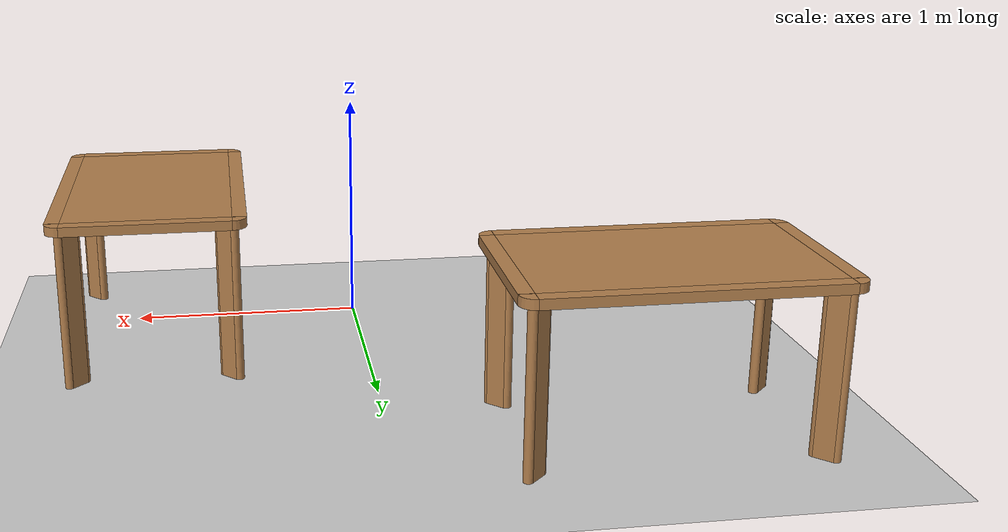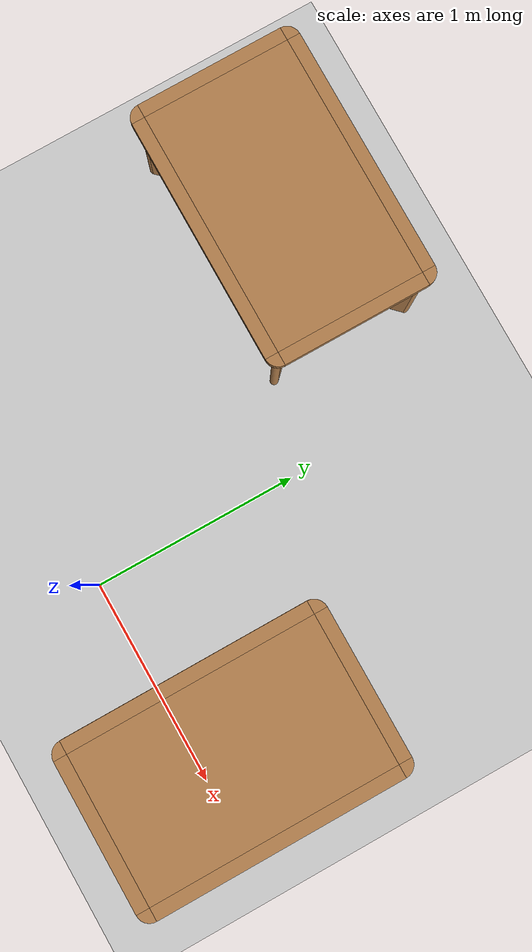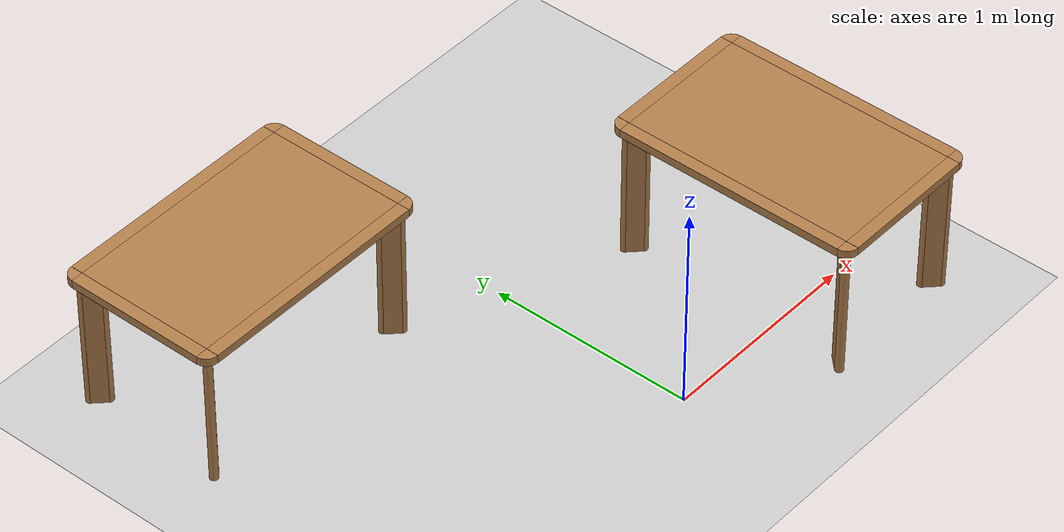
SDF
<sdf version="1.4">
 <world name="table">
  <include><uri>model://ground_plane</uri></include>
  <physics type="ode"><gravity>0 0 -9.81</gravity></physics>
  <include>
   <name>table_01</name>
   <static>true</static>
   <pose>0.9 0.2 0 0 0 0</pose>
   <uri>model://inteliplan_interface/configs/models/table</uri>
  </include>
  <include>
   <name>table_02</name>
   <static>true</static>
   <pose>-1 1.5 0 0 0 1.57</pose>
   <uri>model://inteliplan_interface/configs/models/table</uri>
  </include>
  <light name="user_point_light_0" type="point">
   <pose>-4.98064 4.68115 12 0 -0 0</pose>
   <diffuse>0.5 0.5 0.5 1</diffuse>
   <specular>0.1 0.1 0.1 1</specular>
   <attenuation>
    <range>20</range>
    <constant>0.9</constant>
    <linear>0.01</linear>
    <quadratic>0.001</quadratic>
   </attenuation>
   <cast_shadows>0</cast_shadows>
   <direction>0 0 -1</direction>
  </light>
  <plugin name="CustomWorldPlugin" filename="libworld_gazebo_plugin.so"/>
 </world>
</sdf>

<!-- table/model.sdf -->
<sdf version="1.4">
    <model name='kitchen_table'>
      <link name='link'>
        <pose>0.0 0.0 0.0 0 0 0</pose>
        <inertial>
          <mass>10.0</mass>
          <inertia>
            <ixx>1</ixx>
            <ixy>0</ixy>
            <ixz>0</ixz>
            <iyy>1</iyy>
            <iyz>0</iyz>
            <izz>1</izz>
          </inertia>
        </inertial>
        <visual name='center_board'>
          <pose>0.0 0.0 0.68 0 0 0</pose>
          <geometry>
            <box>
              <size>0.68 1.13 0.04</size>
            </box>
          </geometry>
          <material>
            <script>
              <uri>model://inteliplan_interface/configs/models/table/wood/scripts/wood.material</uri>
              <name>wood</name>
            </script>
          </material>
        </visual>
        <collision name='collision_center_board'>
          <pose>0.0 0.0 0.68 0 0 0</pose>
          <geometry>
            <box>
              <size>0.68 1.13 0.04</size>
            </box>
          </geometry>
          <max_contacts>10</max_contacts>
          <surface>
            <bounce/>
            <friction>
              <ode/>
            </friction>
            <contact>
              <ode/>
            </contact>
          </surface>
        </collision>
        <visual name='front_board'>
          <pose>0.37 0 0.68 0 0 0</pose>
          <geometry>
            <box>
              <size>0.06 1.13 0.04</size>
            </box>
          </geometry>
          <material>
            <script>
              <uri>model://inteliplan_interface/configs/models/table/wood/scripts/wood.material</uri>
              <name>wood</name>
            </script>
          </material>
        </visual>
        <collision name='collision_front_board'>
          <pose>0.37 0 0.68 0 0 0</pose>
          <geometry>
            <box>
              <size>0.06 1.13 0.04</size>
            </box>
          </geometry>
          <max_contacts>10</max_contacts>
          <surface>
            <bounce/>
            <friction>
              <ode/>
            </friction>
            <contact>
              <ode/>
            </contact>
          </surface>
        </collision>
        <visual name='back_board'>
          <pose>-0.37 0 0.68 0 0 0</pose>
          <geometry>
            <box>
              <size>0.06 1.13 0.04</size>
            </box>
          </geometry>
          <material>
            <script>
              <uri>model://inteliplan_interface/configs/models/table/wood/scripts/wood.material</uri>
              <name>wood</name>
            </script>
          </material>
        </visual>
        <collision name='collision_back_board'>
          <pose>-0.37 0 0.68 0 0 0</pose>
          <geometry>
            <box>
              <size>0.06 1.13 0.04</size>
            </box>
          </geometry>
          <max_contacts>10</max_contacts>
          <surface>
            <bounce/>
            <friction>
              <ode/>
            </friction>
            <contact>
              <ode/>
            </contact>
          </surface>
        </collision>
        <visual name='right_board'>
          <pose>0 0.595 0.68 0 0 0</pose>
          <geometry>
            <box>
              <size>0.68 0.06 0.04</size>
            </box>
          </geometry>
          <material>
            <script>
              <uri>model://inteliplan_interface/configs/models/table/wood/scripts/wood.material</uri>
              <name>wood</name>
            </script>
          </material>
        </visual>
        <collision name='collision_right_board'>
          <pose>0 0.595 0.68 0 0 0</pose>
          <geometry>
            <box>
              <size>0.68 0.06 0.04</size>
            </box>
          </geometry>
          <max_contacts>10</max_contacts>
          <surface>
            <bounce/>
            <friction>
              <ode/>
            </friction>
            <contact>
              <ode/>
            </contact>
          </surface>
        </collision>
        <visual name='left_board'>
          <pose>0 -0.595 0.68 0 0 0</pose>
          <geometry>
            <box>
              <size>0.68 0.06 0.04</size>
            </box>
          </geometry>
          <material>
            <script>
              <uri>model://inteliplan_interface/configs/models/table/wood/scripts/wood.material</uri>
              <name>wood</name>
            </script>
          </material>
        </visual>
        <collision name='collision_left_board'>
          <pose>0 -0.595 0.68 0 0 0</pose>
          <geometry>
            <box>
              <size>0.68 0.06 0.04</size>
            </box>
          </geometry>
          <max_contacts>10</max_contacts>
          <surface>
            <bounce/>
            <friction>
              <ode/>
            </friction>
            <contact>
              <ode/>
            </contact>
          </surface>
        </collision>
        <visual name='front_right_corner_board'>
          <pose>0.34 0.565 0.68 0 0 0</pose>
          <geometry>
            <cylinder>
              <radius>0.06</radius>
              <length>0.039</length>
            </cylinder>
          </geometry>
          <material>
            <script>
              <uri>model://inteliplan_interface/configs/models/table/wood/scripts/wood.material</uri>
              <name>wood</name>
            </script>
          </material>
        </visual>
        <collision name='collision_front_right_corner_board'>
          <pose>0.34 0.565 0.68 0 0 0</pose>
          <geometry>
            <cylinder>
              <radius>0.06</radius>
              <length>0.039</length>
            </cylinder>
          </geometry>
          <max_contacts>10</max_contacts>
          <surface>
            <bounce/>
            <friction>
              <ode/>
            </friction>
            <contact>
              <ode/>
            </contact>
          </surface>
        </collision>
        <visual name='front_left_corner_board'>
          <pose>0.34 -0.565 0.68 0 0 0</pose>
          <geometry>
            <cylinder>
              <radius>0.06</radius>
              <length>0.039</length>
            </cylinder>
          </geometry>
          <material>
            <script>
              <uri>model://inteliplan_interface/configs/models/table/wood/scripts/wood.material</uri>
              <name>wood</name>
            </script>
          </material>
        </visual>
        <collision name='collision_front_left_corner_board'>
          <pose>0.34 -0.565 0.68 0 0 0</pose>
          <geometry>
            <cylinder>
              <radius>0.06</radius>
              <length>0.039</length>
            </cylinder>
          </geometry>
          <max_contacts>10</max_contacts>
          <surface>
            <bounce/>
            <friction>
              <ode/>
            </friction>
            <contact>
              <ode/>
            </contact>
          </surface>
        </collision>
        <visual name='front_back_right_corner_board'>
          <pose>-0.34 0.565 0.68 0 0 0</pose>
          <geometry>
            <cylinder>
              <radius>0.06</radius>
              <length>0.039</length>
            </cylinder>
          </geometry>
          <material>
            <script>
              <uri>model://inteliplan_interface/configs/models/table/wood/scripts/wood.material</uri>
              <name>wood</name>
            </script>
          </material>
        </visual>
        <collision name='collision_back_right_corner_board'>
          <pose>-0.34 0.565 0.68 0 0 0</pose>
          <geometry>
            <cylinder>
              <radius>0.06</radius>
              <length>0.039</length>
            </cylinder>
          </geometry>
          <max_contacts>10</max_contacts>
          <surface>
            <bounce/>
            <friction>
              <ode/>
            </friction>
            <contact>
              <ode/>
            </contact>
          </surface>
        </collision>
        <visual name='front_back_left_corner_board'>
          <pose>-0.34 -0.565 0.68 0 0 0</pose>
          <geometry>
            <cylinder>
              <radius>0.06</radius>
              <length>0.039</length>
            </cylinder>
          </geometry>
          <material>
            <script>
              <uri>model://inteliplan_interface/configs/models/table/wood/scripts/wood.material</uri>
              <name>wood</name>
            </script>
          </material>
        </visual>
        <collision name='collision_back_left_corner_board'>
          <pose>-0.34 -0.565 0.68 0 0 0</pose>
          <geometry>
            <cylinder>
              <radius>0.06</radius>
              <length>0.039</length>
            </cylinder>
          </geometry>
          <max_contacts>10</max_contacts>
          <surface>
            <bounce/>
            <friction>
              <ode/>
            </friction>
            <contact>
              <ode/>
            </contact>
          </surface>
        </collision>
        <visual name='front_left_corner_frame1'>
          <pose>0.345858 -0.57086 0.33 0 0 0</pose>
          <geometry>
            <cylinder>
              <radius>0.02</radius>
              <length>0.66</length>
            </cylinder>
          </geometry>
          <material>
            <script>
              <uri>model://inteliplan_interface/configs/models/table/wood/scripts/wood.material</uri>
              <name>wood</name>
            </script>
          </material>
        </visual>
        <collision name='collision_front_left_corner_frame1'>
          <pose>0.345858 -0.57086 0.33 0 0 0</pose>
          <geometry>
            <cylinder>
              <radius>0.02</radius>
              <length>0.66</length>
            </cylinder>
          </geometry>
          <max_contacts>10</max_contacts>
          <surface>
            <bounce/>
            <friction>
              <ode/>
            </friction>
            <contact>
              <ode/>
            </contact>
          </surface>
        </collision>
        <visual name='front_left_corner_frame2'>
          <pose>0.317574 -0.54257 0.33 0 0 0.7854</pose>
          <geometry>
            <box>
              <size>0.04 0.08 0.66</size>
            </box>
          </geometry>
          <material>
            <script>
              <uri>model://inteliplan_interface/configs/models/table/wood/scripts/wood.material</uri>
              <name>wood</name>
            </script>
          </material>
        </visual>
        <collision name='collision_front_left_corner_frame2'>
          <pose>0.317574 -0.54257 0.33 0 0 0.7854</pose>
          <geometry>
            <box>
              <size>0.04 0.08 0.66</size>
            </box>
          </geometry>
          <max_contacts>10</max_contacts>
          <surface>
            <bounce/>
            <friction>
              <ode/>
            </friction>
            <contact>
              <ode/>
            </contact>
          </surface>
        </collision>
        <visual name='front_left_corner_frame3'>
          <pose>0.289289 -0.51429 0.33 0 0 0</pose>
          <geometry>
            <cylinder>
              <radius>0.02</radius>
              <length>0.66</length>
            </cylinder>
          </geometry>
          <material>
            <script>
              <uri>model://inteliplan_interface/configs/models/table/wood/scripts/wood.material</uri>
              <name>wood</name>
            </script>
          </material>
        </visual>
        <collision name='collision_front_left_corner_frame3'>
          <pose>0.289289 -0.51429 0.33 0 0 0</pose>
          <geometry>
            <cylinder>
              <radius>0.02</radius>
              <length>0.66</length>
            </cylinder>
          </geometry>
          <max_contacts>10</max_contacts>
          <surface>
            <bounce/>
            <friction>
              <ode/>
            </friction>
            <contact>
              <ode/>
            </contact>
          </surface>
        </collision>
        <visual name='front_right_corner_frame1'>
          <pose>0.345858 0.57086 0.33 0 0 0</pose>
          <geometry>
            <cylinder>
              <radius>0.02</radius>
              <length>0.66</length>
            </cylinder>
          </geometry>
          <material>
            <script>
              <uri>model://inteliplan_interface/configs/models/table/wood/scripts/wood.material</uri>
              <name>wood</name>
            </script>
          </material>
        </visual>
        <collision name='collision_front_right_corner_frame1'>
          <pose>0.345858 0.57086 0.33 0 0 0</pose>
          <geometry>
            <cylinder>
              <radius>0.02</radius>
              <length>0.66</length>
            </cylinder>
          </geometry>
          <max_contacts>10</max_contacts>
          <surface>
            <bounce/>
            <friction>
              <ode/>
            </friction>
            <contact>
              <ode/>
            </contact>
          </surface>
        </collision>
        <visual name='front_right_corner_frame2'>
          <pose>0.317574 0.54257 0.33 0 0 -0.7854</pose>
          <geometry>
            <box>
              <size>0.04 0.08 0.66</size>
            </box>
          </geometry>
          <material>
            <script>
              <uri>model://inteliplan_interface/configs/models/table/wood/scripts/wood.material</uri>
              <name>wood</name>
            </script>
          </material>
        </visual>
        <collision name='collision_front_right_corner_frame2'>
          <pose>0.317574 0.54257 0.33 0 0 -0.7854</pose>
          <geometry>
            <box>
              <size>0.04 0.08 0.66</size>
            </box>
          </geometry>
          <max_contacts>10</max_contacts>
          <surface>
            <bounce/>
            <friction>
              <ode/>
            </friction>
            <contact>
              <ode/>
            </contact>
          </surface>
        </collision>
        <visual name='front_right_corner_frame3'>
          <pose>0.289289 0.51429 0.33 0 0 0</pose>
          <geometry>
            <cylinder>
              <radius>0.02</radius>
              <length>0.66</length>
            </cylinder>
          </geometry>
          <material>
            <script>
              <uri>model://inteliplan_interface/configs/models/table/wood/scripts/wood.material</uri>
              <name>wood</name>
            </script>
          </material>
        </visual>
        <collision name='collision_front_right_corner_frame3'>
          <pose>0.289289 0.51429 0.33 0 0 0</pose>
          <geometry>
            <cylinder>
              <radius>0.02</radius>
              <length>0.66</length>
            </cylinder>
          </geometry>
          <max_contacts>10</max_contacts>
          <surface>
            <bounce/>
            <friction>
              <ode/>
            </friction>
            <contact>
              <ode/>
            </contact>
          </surface>
        </collision>
        <visual name='back_left_corner_frame1'>
          <pose>-0.345858 -0.57086 0.33 0 0 0</pose>
          <geometry>
            <cylinder>
              <radius>0.02</radius>
              <length>0.66</length>
            </cylinder>
          </geometry>
          <material>
            <script>
              <uri>model://inteliplan_interface/configs/models/table/wood/scripts/wood.material</uri>
              <name>wood</name>
            </script>
          </material>
        </visual>
        <collision name='collision_back_left_corner_frame1'>
          <pose>-0.345858 -0.57086 0.33 0 0 0</pose>
          <geometry>
            <cylinder>
              <radius>0.02</radius>
              <length>0.66</length>
            </cylinder>
          </geometry>
          <max_contacts>10</max_contacts>
          <surface>
            <bounce/>
            <friction>
              <ode/>
            </friction>
            <contact>
              <ode/>
            </contact>
          </surface>
        </collision>
        <visual name='back_left_corner_frame2'>
          <pose>-0.317574 -0.54257 0.33 0 0 -0.7854</pose>
          <geometry>
            <box>
              <size>0.04 0.08 0.66</size>
            </box>
          </geometry>
          <material>
            <script>
              <uri>model://inteliplan_interface/configs/models/table/wood/scripts/wood.material</uri>
              <name>wood</name>
            </script>
          </material>
        </visual>
        <collision name='collision_back_left_corner_frame2'>
          <pose>-0.317574 -0.54257 0.33 0 0 -0.7854</pose>
          <geometry>
            <box>
              <size>0.04 0.08 0.66</size>
            </box>
          </geometry>
          <max_contacts>10</max_contacts>
          <surface>
            <bounce/>
            <friction>
              <ode/>
            </friction>
            <contact>
              <ode/>
            </contact>
          </surface>
        </collision>
        <visual name='back_left_corner_frame3'>
          <pose>-0.289289 -0.51429 0.33 0 0 0</pose>
          <geometry>
            <cylinder>
              <radius>0.02</radius>
              <length>0.66</length>
            </cylinder>
          </geometry>
          <material>
            <script>
              <uri>model://inteliplan_interface/configs/models/table/wood/scripts/wood.material</uri>
              <name>wood</name>
            </script>
          </material>
        </visual>
        <collision name='collision_back_left_corner_frame3'>
          <pose>-0.289289 -0.51429 0.33 0 0 0</pose>
          <geometry>
            <cylinder>
              <radius>0.02</radius>
              <length>0.66</length>
            </cylinder>
          </geometry>
          <max_contacts>10</max_contacts>
          <surface>
            <bounce/>
            <friction>
              <ode/>
            </friction>
            <contact>
              <ode/>
            </contact>
          </surface>
        </collision>
        <visual name='back_right_corner_frame1'>
          <pose>-0.345858 0.57086 0.33 0 0 0</pose>
          <geometry>
            <cylinder>
              <radius>0.02</radius>
              <length>0.66</length>
            </cylinder>
          </geometry>
          <material>
            <script>
              <uri>model://inteliplan_interface/configs/models/table/wood/scripts/wood.material</uri>
              <name>wood</name>
            </script>
          </material>
        </visual>
        <collision name='collision_back_right_corner_frame1'>
          <pose>-0.345858 0.57086 0.33 0 0 0</pose>
          <geometry>
            <cylinder>
              <radius>0.02</radius>
              <length>0.66</length>
            </cylinder>
          </geometry>
          <max_contacts>10</max_contacts>
          <surface>
            <bounce/>
            <friction>
              <ode/>
            </friction>
            <contact>
              <ode/>
            </contact>
          </surface>
        </collision>
        <visual name='back_right_corner_frame2'>
          <pose>-0.317574 0.54257 0.33 0 0 0.7854</pose>
          <geometry>
            <box>
              <size>0.04 0.08 0.66</size>
            </box>
          </geometry>
          <material>
            <script>
              <uri>model://inteliplan_interface/configs/models/table/wood/scripts/wood.material</uri>
              <name>wood</name>
            </script>
          </material>
        </visual>
        <collision name='collision_back_right_corner_frame2'>
          <pose>-0.317574 0.54257 0.33 0 0 0.7854</pose>
          <geometry>
            <box>
              <size>0.04 0.08 0.66</size>
            </box>
          </geometry>
          <max_contacts>10</max_contacts>
          <surface>
            <bounce/>
            <friction>
              <ode/>
            </friction>
            <contact>
              <ode/>
            </contact>
          </surface>
        </collision>
        <visual name='back_right_corner_frame3'>
          <pose>-0.289289 0.51429 0.33 0 0 0</pose>
          <geometry>
            <cylinder>
              <radius>0.02</radius>
              <length>0.66</length>
            </cylinder>
          </geometry>
          <material>
            <script>
              <uri>model://inteliplan_interface/configs/models/table/wood/scripts/wood.material</uri>
              <name>wood</name>
            </script>
          </material>
        </visual>
        <collision name='collision_back_right_corner_frame3'>
          <pose>-0.289289 0.51429 0.33 0 0 0</pose>
          <geometry>
            <cylinder>
              <radius>0.02</radius>
              <length>0.66</length>
            </cylinder>
          </geometry>
          <max_contacts>10</max_contacts>
          <surface>
            <bounce/>
            <friction>
              <ode/>
            </friction>
            <contact>
              <ode/>
            </contact>
          </surface>
        </collision>
        <velocity_decay>
          <linear>0</linear>
          <angular>0</angular>
        </velocity_decay>
        <self_collide>0</self_collide>
        <kinematic>0</kinematic>
        <gravity>1</gravity>
      </link>
      <static>0</static>
    </model>
</sdf>
